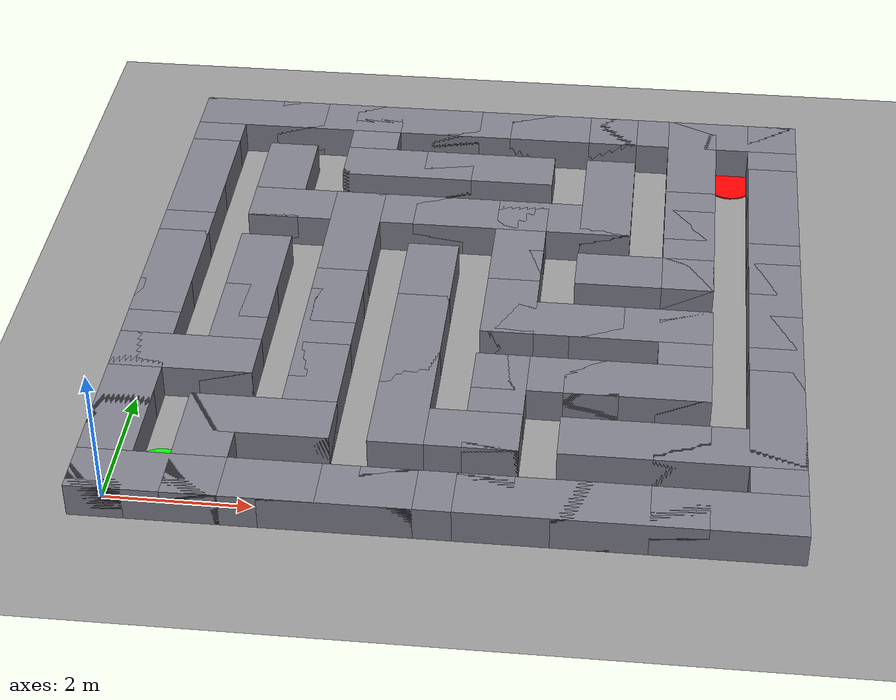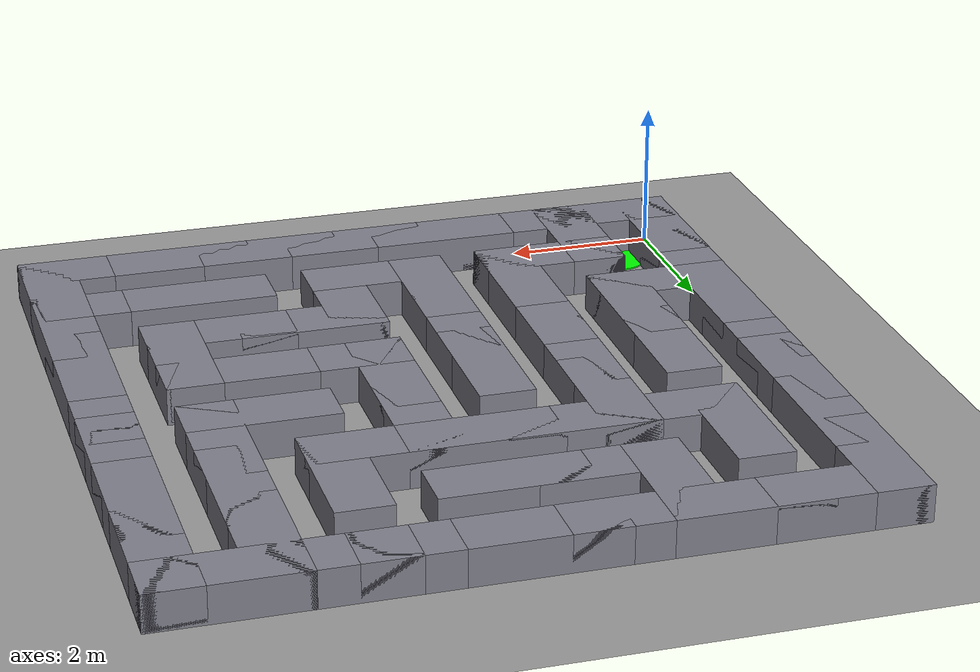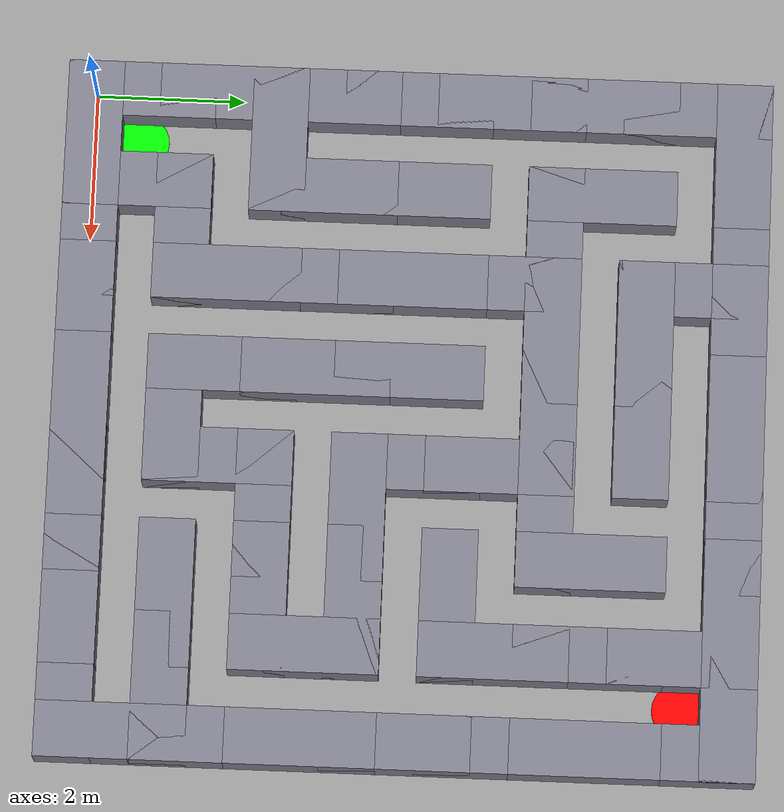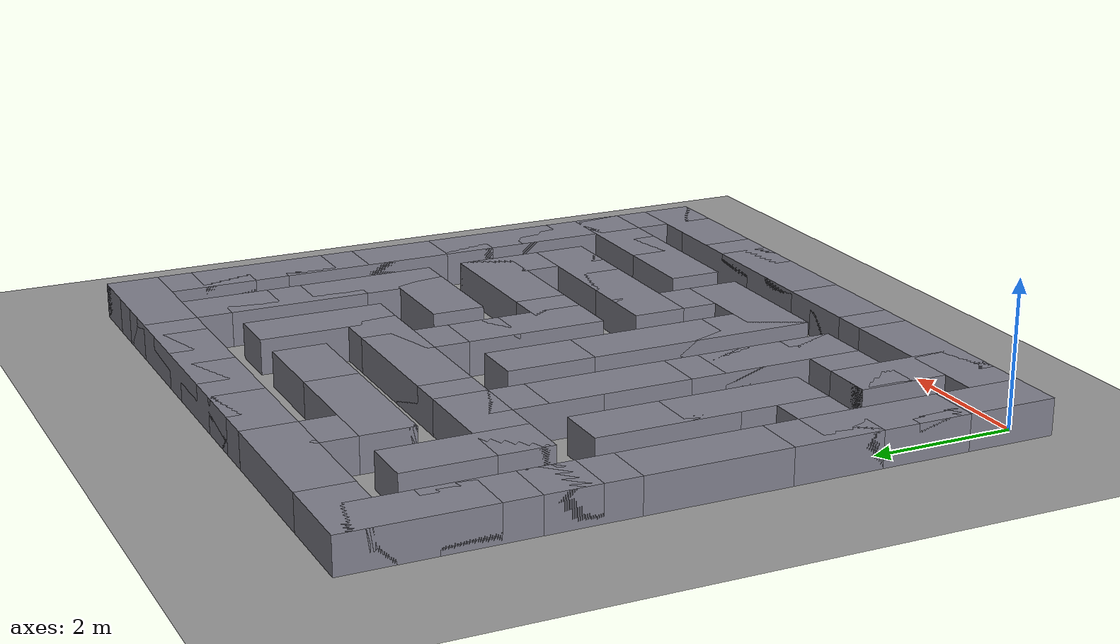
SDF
<?xml version="1.0" ?>
<sdf version="1.10">
  <world name="maze_world">
    <physics name="1ms" type="ode">
      <max_step_size>0.001</max_step_size>
      <real_time_factor>1.0</real_time_factor>
    </physics>

    <plugin filename="gz-sim-physics-system" name="gz::sim::systems::Physics"/>

    <plugin filename="gz-sim-user-commands-system" name="gz::sim::systems::UserCommands"/>

    <plugin filename="gz-sim-scene-broadcaster-system" name="gz::sim::systems::SceneBroadcaster"/>

    <plugin filename="gz-sim-imu-system" name="gz::sim::systems::Imu"/>

    <plugin filename="gz-sim-sensors-system"  name="gz::sim::systems::Sensors">
        <render_engine>ogre2</render_engine>
    </plugin>

    <light type="directional" name="sun">
      <cast_shadows>true</cast_shadows>
      <pose>0 0 10 0 0 0</pose>
      <diffuse>0.8 0.8 0.8 1</diffuse>
      <specular>0.2 0.2 0.2 1</specular>
      <direction>-0.5 0.1 -0.9</direction>
    </light>

    <model name="ground_plane">
      <static>true</static>
      <link name="link">
        <collision name="collision">
          <geometry>
            <plane>
              <normal>0 0 1</normal>
              <size>1000 1000</size>
            </plane>
          </geometry>
        </collision>
        <visual name="visual">
          <geometry>
            <plane>
              <normal>0 0 1</normal>
              <size>1000 1000</size>
            </plane>
          </geometry>
          <material>
            <ambient>0.6 0.6 0.6 1</ambient>
            <diffuse>0.6 0.6 0.6 1</diffuse>
          </material>
        </visual>
      </link>
    </model>
    <model name="wall_0">
      <static>true</static>
      <pose>0.0 0.625 0.25 0 0 1.570796</pose>
      <link name="link">
        <collision name="collision">
          <geometry>
            <box>
              <size>2.0 0.75 0.5</size>
            </box>
          </geometry>
        </collision>
        <visual name="visual">
          <geometry>
            <box>
              <size>2.0 0.75 0.5</size>
            </box>
          </geometry>
          <material>
            <ambient>0.5 0.5 0.55 1</ambient>
            <diffuse>0.5 0.5 0.55 1</diffuse>
          </material>
        </visual>
      </link>
    </model>
    <model name="wall_1">
      <static>true</static>
      <pose>0.625 0.0 0.25 0 0 0.0</pose>
      <link name="link">
        <collision name="collision">
          <geometry>
            <box>
              <size>2.0 0.75 0.5</size>
            </box>
          </geometry>
        </collision>
        <visual name="visual">
          <geometry>
            <box>
              <size>2.0 0.75 0.5</size>
            </box>
          </geometry>
          <material>
            <ambient>0.5 0.5 0.55 1</ambient>
            <diffuse>0.5 0.5 0.55 1</diffuse>
          </material>
        </visual>
      </link>
    </model>
    <model name="wall_2">
      <static>true</static>
      <pose>0.0 1.875 0.25 0 0 1.570796</pose>
      <link name="link">
        <collision name="collision">
          <geometry>
            <box>
              <size>2.0 0.75 0.5</size>
            </box>
          </geometry>
        </collision>
        <visual name="visual">
          <geometry>
            <box>
              <size>2.0 0.75 0.5</size>
            </box>
          </geometry>
          <material>
            <ambient>0.5 0.5 0.55 1</ambient>
            <diffuse>0.5 0.5 0.55 1</diffuse>
          </material>
        </visual>
      </link>
    </model>
    <model name="wall_3">
      <static>true</static>
      <pose>0.0 3.125 0.25 0 0 1.570796</pose>
      <link name="link">
        <collision name="collision">
          <geometry>
            <box>
              <size>2.0 0.75 0.5</size>
            </box>
          </geometry>
        </collision>
        <visual name="visual">
          <geometry>
            <box>
              <size>2.0 0.75 0.5</size>
            </box>
          </geometry>
          <material>
            <ambient>0.5 0.5 0.55 1</ambient>
            <diffuse>0.5 0.5 0.55 1</diffuse>
          </material>
        </visual>
      </link>
    </model>
    <model name="wall_4">
      <static>true</static>
      <pose>0.625 2.5 0.25 0 0 0.0</pose>
      <link name="link">
        <collision name="collision">
          <geometry>
            <box>
              <size>2.0 0.75 0.5</size>
            </box>
          </geometry>
        </collision>
        <visual name="visual">
          <geometry>
            <box>
              <size>2.0 0.75 0.5</size>
            </box>
          </geometry>
          <material>
            <ambient>0.5 0.5 0.55 1</ambient>
            <diffuse>0.5 0.5 0.55 1</diffuse>
          </material>
        </visual>
      </link>
    </model>
    <model name="wall_5">
      <static>true</static>
      <pose>0.0 4.375 0.25 0 0 1.570796</pose>
      <link name="link">
        <collision name="collision">
          <geometry>
            <box>
              <size>2.0 0.75 0.5</size>
            </box>
          </geometry>
        </collision>
        <visual name="visual">
          <geometry>
            <box>
              <size>2.0 0.75 0.5</size>
            </box>
          </geometry>
          <material>
            <ambient>0.5 0.5 0.55 1</ambient>
            <diffuse>0.5 0.5 0.55 1</diffuse>
          </material>
        </visual>
      </link>
    </model>
    <model name="wall_6">
      <static>true</static>
      <pose>0.0 5.625 0.25 0 0 1.570796</pose>
      <link name="link">
        <collision name="collision">
          <geometry>
            <box>
              <size>2.0 0.75 0.5</size>
            </box>
          </geometry>
        </collision>
        <visual name="visual">
          <geometry>
            <box>
              <size>2.0 0.75 0.5</size>
            </box>
          </geometry>
          <material>
            <ambient>0.5 0.5 0.55 1</ambient>
            <diffuse>0.5 0.5 0.55 1</diffuse>
          </material>
        </visual>
      </link>
    </model>
    <model name="wall_7">
      <static>true</static>
      <pose>0.0 6.875 0.25 0 0 1.570796</pose>
      <link name="link">
        <collision name="collision">
          <geometry>
            <box>
              <size>2.0 0.75 0.5</size>
            </box>
          </geometry>
        </collision>
        <visual name="visual">
          <geometry>
            <box>
              <size>2.0 0.75 0.5</size>
            </box>
          </geometry>
          <material>
            <ambient>0.5 0.5 0.55 1</ambient>
            <diffuse>0.5 0.5 0.55 1</diffuse>
          </material>
        </visual>
      </link>
    </model>
    <model name="wall_8">
      <static>true</static>
      <pose>0.0 8.125 0.25 0 0 1.570796</pose>
      <link name="link">
        <collision name="collision">
          <geometry>
            <box>
              <size>2.0 0.75 0.5</size>
            </box>
          </geometry>
        </collision>
        <visual name="visual">
          <geometry>
            <box>
              <size>2.0 0.75 0.5</size>
            </box>
          </geometry>
          <material>
            <ambient>0.5 0.5 0.55 1</ambient>
            <diffuse>0.5 0.5 0.55 1</diffuse>
          </material>
        </visual>
      </link>
    </model>
    <model name="wall_9">
      <static>true</static>
      <pose>0.625 8.75 0.25 0 0 0.0</pose>
      <link name="link">
        <collision name="collision">
          <geometry>
            <box>
              <size>2.0 0.75 0.5</size>
            </box>
          </geometry>
        </collision>
        <visual name="visual">
          <geometry>
            <box>
              <size>2.0 0.75 0.5</size>
            </box>
          </geometry>
          <material>
            <ambient>0.5 0.5 0.55 1</ambient>
            <diffuse>0.5 0.5 0.55 1</diffuse>
          </material>
        </visual>
      </link>
    </model>
    <model name="wall_10">
      <static>true</static>
      <pose>1.25 0.625 0.25 0 0 1.570796</pose>
      <link name="link">
        <collision name="collision">
          <geometry>
            <box>
              <size>2.0 0.75 0.5</size>
            </box>
          </geometry>
        </collision>
        <visual name="visual">
          <geometry>
            <box>
              <size>2.0 0.75 0.5</size>
            </box>
          </geometry>
          <material>
            <ambient>0.5 0.5 0.55 1</ambient>
            <diffuse>0.5 0.5 0.55 1</diffuse>
          </material>
        </visual>
      </link>
    </model>
    <model name="wall_11">
      <static>true</static>
      <pose>1.875 0.0 0.25 0 0 0.0</pose>
      <link name="link">
        <collision name="collision">
          <geometry>
            <box>
              <size>2.0 0.75 0.5</size>
            </box>
          </geometry>
        </collision>
        <visual name="visual">
          <geometry>
            <box>
              <size>2.0 0.75 0.5</size>
            </box>
          </geometry>
          <material>
            <ambient>0.5 0.5 0.55 1</ambient>
            <diffuse>0.5 0.5 0.55 1</diffuse>
          </material>
        </visual>
      </link>
    </model>
    <model name="wall_12">
      <static>true</static>
      <pose>1.875 1.25 0.25 0 0 0.0</pose>
      <link name="link">
        <collision name="collision">
          <geometry>
            <box>
              <size>2.0 0.75 0.5</size>
            </box>
          </geometry>
        </collision>
        <visual name="visual">
          <geometry>
            <box>
              <size>2.0 0.75 0.5</size>
            </box>
          </geometry>
          <material>
            <ambient>0.5 0.5 0.55 1</ambient>
            <diffuse>0.5 0.5 0.55 1</diffuse>
          </material>
        </visual>
      </link>
    </model>
    <model name="wall_13">
      <static>true</static>
      <pose>1.25 3.125 0.25 0 0 1.570796</pose>
      <link name="link">
        <collision name="collision">
          <geometry>
            <box>
              <size>2.0 0.75 0.5</size>
            </box>
          </geometry>
        </collision>
        <visual name="visual">
          <geometry>
            <box>
              <size>2.0 0.75 0.5</size>
            </box>
          </geometry>
          <material>
            <ambient>0.5 0.5 0.55 1</ambient>
            <diffuse>0.5 0.5 0.55 1</diffuse>
          </material>
        </visual>
      </link>
    </model>
    <model name="wall_14">
      <static>true</static>
      <pose>1.25 4.375 0.25 0 0 1.570796</pose>
      <link name="link">
        <collision name="collision">
          <geometry>
            <box>
              <size>2.0 0.75 0.5</size>
            </box>
          </geometry>
        </collision>
        <visual name="visual">
          <geometry>
            <box>
              <size>2.0 0.75 0.5</size>
            </box>
          </geometry>
          <material>
            <ambient>0.5 0.5 0.55 1</ambient>
            <diffuse>0.5 0.5 0.55 1</diffuse>
          </material>
        </visual>
      </link>
    </model>
    <model name="wall_15">
      <static>true</static>
      <pose>1.25 6.875 0.25 0 0 1.570796</pose>
      <link name="link">
        <collision name="collision">
          <geometry>
            <box>
              <size>2.0 0.75 0.5</size>
            </box>
          </geometry>
        </collision>
        <visual name="visual">
          <geometry>
            <box>
              <size>2.0 0.75 0.5</size>
            </box>
          </geometry>
          <material>
            <ambient>0.5 0.5 0.55 1</ambient>
            <diffuse>0.5 0.5 0.55 1</diffuse>
          </material>
        </visual>
      </link>
    </model>
    <model name="wall_16">
      <static>true</static>
      <pose>1.875 6.25 0.25 0 0 0.0</pose>
      <link name="link">
        <collision name="collision">
          <geometry>
            <box>
              <size>2.0 0.75 0.5</size>
            </box>
          </geometry>
        </collision>
        <visual name="visual">
          <geometry>
            <box>
              <size>2.0 0.75 0.5</size>
            </box>
          </geometry>
          <material>
            <ambient>0.5 0.5 0.55 1</ambient>
            <diffuse>0.5 0.5 0.55 1</diffuse>
          </material>
        </visual>
      </link>
    </model>
    <model name="wall_17">
      <static>true</static>
      <pose>1.875 8.75 0.25 0 0 0.0</pose>
      <link name="link">
        <collision name="collision">
          <geometry>
            <box>
              <size>2.0 0.75 0.5</size>
            </box>
          </geometry>
        </collision>
        <visual name="visual">
          <geometry>
            <box>
              <size>2.0 0.75 0.5</size>
            </box>
          </geometry>
          <material>
            <ambient>0.5 0.5 0.55 1</ambient>
            <diffuse>0.5 0.5 0.55 1</diffuse>
          </material>
        </visual>
      </link>
    </model>
    <model name="wall_18">
      <static>true</static>
      <pose>3.125 0.0 0.25 0 0 0.0</pose>
      <link name="link">
        <collision name="collision">
          <geometry>
            <box>
              <size>2.0 0.75 0.5</size>
            </box>
          </geometry>
        </collision>
        <visual name="visual">
          <geometry>
            <box>
              <size>2.0 0.75 0.5</size>
            </box>
          </geometry>
          <material>
            <ambient>0.5 0.5 0.55 1</ambient>
            <diffuse>0.5 0.5 0.55 1</diffuse>
          </material>
        </visual>
      </link>
    </model>
    <model name="wall_19">
      <static>true</static>
      <pose>2.5 1.875 0.25 0 0 1.570796</pose>
      <link name="link">
        <collision name="collision">
          <geometry>
            <box>
              <size>2.0 0.75 0.5</size>
            </box>
          </geometry>
        </collision>
        <visual name="visual">
          <geometry>
            <box>
              <size>2.0 0.75 0.5</size>
            </box>
          </geometry>
          <material>
            <ambient>0.5 0.5 0.55 1</ambient>
            <diffuse>0.5 0.5 0.55 1</diffuse>
          </material>
        </visual>
      </link>
    </model>
    <model name="wall_20">
      <static>true</static>
      <pose>2.5 3.125 0.25 0 0 1.570796</pose>
      <link name="link">
        <collision name="collision">
          <geometry>
            <box>
              <size>2.0 0.75 0.5</size>
            </box>
          </geometry>
        </collision>
        <visual name="visual">
          <geometry>
            <box>
              <size>2.0 0.75 0.5</size>
            </box>
          </geometry>
          <material>
            <ambient>0.5 0.5 0.55 1</ambient>
            <diffuse>0.5 0.5 0.55 1</diffuse>
          </material>
        </visual>
      </link>
    </model>
    <model name="wall_21">
      <static>true</static>
      <pose>2.5 4.375 0.25 0 0 1.570796</pose>
      <link name="link">
        <collision name="collision">
          <geometry>
            <box>
              <size>2.0 0.75 0.5</size>
            </box>
          </geometry>
        </collision>
        <visual name="visual">
          <geometry>
            <box>
              <size>2.0 0.75 0.5</size>
            </box>
          </geometry>
          <material>
            <ambient>0.5 0.5 0.55 1</ambient>
            <diffuse>0.5 0.5 0.55 1</diffuse>
          </material>
        </visual>
      </link>
    </model>
    <model name="wall_22">
      <static>true</static>
      <pose>2.5 5.625 0.25 0 0 1.570796</pose>
      <link name="link">
        <collision name="collision">
          <geometry>
            <box>
              <size>2.0 0.75 0.5</size>
            </box>
          </geometry>
        </collision>
        <visual name="visual">
          <geometry>
            <box>
              <size>2.0 0.75 0.5</size>
            </box>
          </geometry>
          <material>
            <ambient>0.5 0.5 0.55 1</ambient>
            <diffuse>0.5 0.5 0.55 1</diffuse>
          </material>
        </visual>
      </link>
    </model>
    <model name="wall_23">
      <static>true</static>
      <pose>3.125 6.25 0.25 0 0 0.0</pose>
      <link name="link">
        <collision name="collision">
          <geometry>
            <box>
              <size>2.0 0.75 0.5</size>
            </box>
          </geometry>
        </collision>
        <visual name="visual">
          <geometry>
            <box>
              <size>2.0 0.75 0.5</size>
            </box>
          </geometry>
          <material>
            <ambient>0.5 0.5 0.55 1</ambient>
            <diffuse>0.5 0.5 0.55 1</diffuse>
          </material>
        </visual>
      </link>
    </model>
    <model name="wall_24">
      <static>true</static>
      <pose>2.5 8.125 0.25 0 0 1.570796</pose>
      <link name="link">
        <collision name="collision">
          <geometry>
            <box>
              <size>2.0 0.75 0.5</size>
            </box>
          </geometry>
        </collision>
        <visual name="visual">
          <geometry>
            <box>
              <size>2.0 0.75 0.5</size>
            </box>
          </geometry>
          <material>
            <ambient>0.5 0.5 0.55 1</ambient>
            <diffuse>0.5 0.5 0.55 1</diffuse>
          </material>
        </visual>
      </link>
    </model>
    <model name="wall_25">
      <static>true</static>
      <pose>3.125 7.5 0.25 0 0 0.0</pose>
      <link name="link">
        <collision name="collision">
          <geometry>
            <box>
              <size>2.0 0.75 0.5</size>
            </box>
          </geometry>
        </collision>
        <visual name="visual">
          <geometry>
            <box>
              <size>2.0 0.75 0.5</size>
            </box>
          </geometry>
          <material>
            <ambient>0.5 0.5 0.55 1</ambient>
            <diffuse>0.5 0.5 0.55 1</diffuse>
          </material>
        </visual>
      </link>
    </model>
    <model name="wall_26">
      <static>true</static>
      <pose>3.125 8.75 0.25 0 0 0.0</pose>
      <link name="link">
        <collision name="collision">
          <geometry>
            <box>
              <size>2.0 0.75 0.5</size>
            </box>
          </geometry>
        </collision>
        <visual name="visual">
          <geometry>
            <box>
              <size>2.0 0.75 0.5</size>
            </box>
          </geometry>
          <material>
            <ambient>0.5 0.5 0.55 1</ambient>
            <diffuse>0.5 0.5 0.55 1</diffuse>
          </material>
        </visual>
      </link>
    </model>
    <model name="wall_27">
      <static>true</static>
      <pose>4.375 0.0 0.25 0 0 0.0</pose>
      <link name="link">
        <collision name="collision">
          <geometry>
            <box>
              <size>2.0 0.75 0.5</size>
            </box>
          </geometry>
        </collision>
        <visual name="visual">
          <geometry>
            <box>
              <size>2.0 0.75 0.5</size>
            </box>
          </geometry>
          <material>
            <ambient>0.5 0.5 0.55 1</ambient>
            <diffuse>0.5 0.5 0.55 1</diffuse>
          </material>
        </visual>
      </link>
    </model>
    <model name="wall_28">
      <static>true</static>
      <pose>3.75 1.875 0.25 0 0 1.570796</pose>
      <link name="link">
        <collision name="collision">
          <geometry>
            <box>
              <size>2.0 0.75 0.5</size>
            </box>
          </geometry>
        </collision>
        <visual name="visual">
          <geometry>
            <box>
              <size>2.0 0.75 0.5</size>
            </box>
          </geometry>
          <material>
            <ambient>0.5 0.5 0.55 1</ambient>
            <diffuse>0.5 0.5 0.55 1</diffuse>
          </material>
        </visual>
      </link>
    </model>
    <model name="wall_29">
      <static>true</static>
      <pose>4.375 1.25 0.25 0 0 0.0</pose>
      <link name="link">
        <collision name="collision">
          <geometry>
            <box>
              <size>2.0 0.75 0.5</size>
            </box>
          </geometry>
        </collision>
        <visual name="visual">
          <geometry>
            <box>
              <size>2.0 0.75 0.5</size>
            </box>
          </geometry>
          <material>
            <ambient>0.5 0.5 0.55 1</ambient>
            <diffuse>0.5 0.5 0.55 1</diffuse>
          </material>
        </visual>
      </link>
    </model>
    <model name="wall_30">
      <static>true</static>
      <pose>3.75 3.125 0.25 0 0 1.570796</pose>
      <link name="link">
        <collision name="collision">
          <geometry>
            <box>
              <size>2.0 0.75 0.5</size>
            </box>
          </geometry>
        </collision>
        <visual name="visual">
          <geometry>
            <box>
              <size>2.0 0.75 0.5</size>
            </box>
          </geometry>
          <material>
            <ambient>0.5 0.5 0.55 1</ambient>
            <diffuse>0.5 0.5 0.55 1</diffuse>
          </material>
        </visual>
      </link>
    </model>
    <model name="wall_31">
      <static>true</static>
      <pose>3.75 4.375 0.25 0 0 1.570796</pose>
      <link name="link">
        <collision name="collision">
          <geometry>
            <box>
              <size>2.0 0.75 0.5</size>
            </box>
          </geometry>
        </collision>
        <visual name="visual">
          <geometry>
            <box>
              <size>2.0 0.75 0.5</size>
            </box>
          </geometry>
          <material>
            <ambient>0.5 0.5 0.55 1</ambient>
            <diffuse>0.5 0.5 0.55 1</diffuse>
          </material>
        </visual>
      </link>
    </model>
    <model name="wall_32">
      <static>true</static>
      <pose>4.375 6.25 0.25 0 0 0.0</pose>
      <link name="link">
        <collision name="collision">
          <geometry>
            <box>
              <size>2.0 0.75 0.5</size>
            </box>
          </geometry>
        </collision>
        <visual name="visual">
          <geometry>
            <box>
              <size>2.0 0.75 0.5</size>
            </box>
          </geometry>
          <material>
            <ambient>0.5 0.5 0.55 1</ambient>
            <diffuse>0.5 0.5 0.55 1</diffuse>
          </material>
        </visual>
      </link>
    </model>
    <model name="wall_33">
      <static>true</static>
      <pose>4.375 7.5 0.25 0 0 0.0</pose>
      <link name="link">
        <collision name="collision">
          <geometry>
            <box>
              <size>2.0 0.75 0.5</size>
            </box>
          </geometry>
        </collision>
        <visual name="visual">
          <geometry>
            <box>
              <size>2.0 0.75 0.5</size>
            </box>
          </geometry>
          <material>
            <ambient>0.5 0.5 0.55 1</ambient>
            <diffuse>0.5 0.5 0.55 1</diffuse>
          </material>
        </visual>
      </link>
    </model>
    <model name="wall_34">
      <static>true</static>
      <pose>4.375 8.75 0.25 0 0 0.0</pose>
      <link name="link">
        <collision name="collision">
          <geometry>
            <box>
              <size>2.0 0.75 0.5</size>
            </box>
          </geometry>
        </collision>
        <visual name="visual">
          <geometry>
            <box>
              <size>2.0 0.75 0.5</size>
            </box>
          </geometry>
          <material>
            <ambient>0.5 0.5 0.55 1</ambient>
            <diffuse>0.5 0.5 0.55 1</diffuse>
          </material>
        </visual>
      </link>
    </model>
    <model name="wall_35">
      <static>true</static>
      <pose>5.625 0.0 0.25 0 0 0.0</pose>
      <link name="link">
        <collision name="collision">
          <geometry>
            <box>
              <size>2.0 0.75 0.5</size>
            </box>
          </geometry>
        </collision>
        <visual name="visual">
          <geometry>
            <box>
              <size>2.0 0.75 0.5</size>
            </box>
          </geometry>
          <material>
            <ambient>0.5 0.5 0.55 1</ambient>
            <diffuse>0.5 0.5 0.55 1</diffuse>
          </material>
        </visual>
      </link>
    </model>
    <model name="wall_36">
      <static>true</static>
      <pose>5.0 1.875 0.25 0 0 1.570796</pose>
      <link name="link">
        <collision name="collision">
          <geometry>
            <box>
              <size>2.0 0.75 0.5</size>
            </box>
          </geometry>
        </collision>
        <visual name="visual">
          <geometry>
            <box>
              <size>2.0 0.75 0.5</size>
            </box>
          </geometry>
          <material>
            <ambient>0.5 0.5 0.55 1</ambient>
            <diffuse>0.5 0.5 0.55 1</diffuse>
          </material>
        </visual>
      </link>
    </model>
    <model name="wall_37">
      <static>true</static>
      <pose>5.625 2.5 0.25 0 0 0.0</pose>
      <link name="link">
        <collision name="collision">
          <geometry>
            <box>
              <size>2.0 0.75 0.5</size>
            </box>
          </geometry>
        </collision>
        <visual name="visual">
          <geometry>
            <box>
              <size>2.0 0.75 0.5</size>
            </box>
          </geometry>
          <material>
            <ambient>0.5 0.5 0.55 1</ambient>
            <diffuse>0.5 0.5 0.55 1</diffuse>
          </material>
        </visual>
      </link>
    </model>
    <model name="wall_38">
      <static>true</static>
      <pose>5.0 4.375 0.25 0 0 1.570796</pose>
      <link name="link">
        <collision name="collision">
          <geometry>
            <box>
              <size>2.0 0.75 0.5</size>
            </box>
          </geometry>
        </collision>
        <visual name="visual">
          <geometry>
            <box>
              <size>2.0 0.75 0.5</size>
            </box>
          </geometry>
          <material>
            <ambient>0.5 0.5 0.55 1</ambient>
            <diffuse>0.5 0.5 0.55 1</diffuse>
          </material>
        </visual>
      </link>
    </model>
    <model name="wall_39">
      <static>true</static>
      <pose>5.625 3.75 0.25 0 0 0.0</pose>
      <link name="link">
        <collision name="collision">
          <geometry>
            <box>
              <size>2.0 0.75 0.5</size>
            </box>
          </geometry>
        </collision>
        <visual name="visual">
          <geometry>
            <box>
              <size>2.0 0.75 0.5</size>
            </box>
          </geometry>
          <material>
            <ambient>0.5 0.5 0.55 1</ambient>
            <diffuse>0.5 0.5 0.55 1</diffuse>
          </material>
        </visual>
      </link>
    </model>
    <model name="wall_40">
      <static>true</static>
      <pose>5.0 5.625 0.25 0 0 1.570796</pose>
      <link name="link">
        <collision name="collision">
          <geometry>
            <box>
              <size>2.0 0.75 0.5</size>
            </box>
          </geometry>
        </collision>
        <visual name="visual">
          <geometry>
            <box>
              <size>2.0 0.75 0.5</size>
            </box>
          </geometry>
          <material>
            <ambient>0.5 0.5 0.55 1</ambient>
            <diffuse>0.5 0.5 0.55 1</diffuse>
          </material>
        </visual>
      </link>
    </model>
    <model name="wall_41">
      <static>true</static>
      <pose>5.625 6.25 0.25 0 0 0.0</pose>
      <link name="link">
        <collision name="collision">
          <geometry>
            <box>
              <size>2.0 0.75 0.5</size>
            </box>
          </geometry>
        </collision>
        <visual name="visual">
          <geometry>
            <box>
              <size>2.0 0.75 0.5</size>
            </box>
          </geometry>
          <material>
            <ambient>0.5 0.5 0.55 1</ambient>
            <diffuse>0.5 0.5 0.55 1</diffuse>
          </material>
        </visual>
      </link>
    </model>
    <model name="wall_42">
      <static>true</static>
      <pose>5.625 8.75 0.25 0 0 0.0</pose>
      <link name="link">
        <collision name="collision">
          <geometry>
            <box>
              <size>2.0 0.75 0.5</size>
            </box>
          </geometry>
        </collision>
        <visual name="visual">
          <geometry>
            <box>
              <size>2.0 0.75 0.5</size>
            </box>
          </geometry>
          <material>
            <ambient>0.5 0.5 0.55 1</ambient>
            <diffuse>0.5 0.5 0.55 1</diffuse>
          </material>
        </visual>
      </link>
    </model>
    <model name="wall_43">
      <static>true</static>
      <pose>6.875 0.0 0.25 0 0 0.0</pose>
      <link name="link">
        <collision name="collision">
          <geometry>
            <box>
              <size>2.0 0.75 0.5</size>
            </box>
          </geometry>
        </collision>
        <visual name="visual">
          <geometry>
            <box>
              <size>2.0 0.75 0.5</size>
            </box>
          </geometry>
          <material>
            <ambient>0.5 0.5 0.55 1</ambient>
            <diffuse>0.5 0.5 0.55 1</diffuse>
          </material>
        </visual>
      </link>
    </model>
    <model name="wall_44">
      <static>true</static>
      <pose>6.875 1.25 0.25 0 0 0.0</pose>
      <link name="link">
        <collision name="collision">
          <geometry>
            <box>
              <size>2.0 0.75 0.5</size>
            </box>
          </geometry>
        </collision>
        <visual name="visual">
          <geometry>
            <box>
              <size>2.0 0.75 0.5</size>
            </box>
          </geometry>
          <material>
            <ambient>0.5 0.5 0.55 1</ambient>
            <diffuse>0.5 0.5 0.55 1</diffuse>
          </material>
        </visual>
      </link>
    </model>
    <model name="wall_45">
      <static>true</static>
      <pose>6.875 2.5 0.25 0 0 0.0</pose>
      <link name="link">
        <collision name="collision">
          <geometry>
            <box>
              <size>2.0 0.75 0.5</size>
            </box>
          </geometry>
        </collision>
        <visual name="visual">
          <geometry>
            <box>
              <size>2.0 0.75 0.5</size>
            </box>
          </geometry>
          <material>
            <ambient>0.5 0.5 0.55 1</ambient>
            <diffuse>0.5 0.5 0.55 1</diffuse>
          </material>
        </visual>
      </link>
    </model>
    <model name="wall_46">
      <static>true</static>
      <pose>6.875 3.75 0.25 0 0 0.0</pose>
      <link name="link">
        <collision name="collision">
          <geometry>
            <box>
              <size>2.0 0.75 0.5</size>
            </box>
          </geometry>
        </collision>
        <visual name="visual">
          <geometry>
            <box>
              <size>2.0 0.75 0.5</size>
            </box>
          </geometry>
          <material>
            <ambient>0.5 0.5 0.55 1</ambient>
            <diffuse>0.5 0.5 0.55 1</diffuse>
          </material>
        </visual>
      </link>
    </model>
    <model name="wall_47">
      <static>true</static>
      <pose>6.875 5.0 0.25 0 0 0.0</pose>
      <link name="link">
        <collision name="collision">
          <geometry>
            <box>
              <size>2.0 0.75 0.5</size>
            </box>
          </geometry>
        </collision>
        <visual name="visual">
          <geometry>
            <box>
              <size>2.0 0.75 0.5</size>
            </box>
          </geometry>
          <material>
            <ambient>0.5 0.5 0.55 1</ambient>
            <diffuse>0.5 0.5 0.55 1</diffuse>
          </material>
        </visual>
      </link>
    </model>
    <model name="wall_48">
      <static>true</static>
      <pose>6.25 6.875 0.25 0 0 1.570796</pose>
      <link name="link">
        <collision name="collision">
          <geometry>
            <box>
              <size>2.0 0.75 0.5</size>
            </box>
          </geometry>
        </collision>
        <visual name="visual">
          <geometry>
            <box>
              <size>2.0 0.75 0.5</size>
            </box>
          </geometry>
          <material>
            <ambient>0.5 0.5 0.55 1</ambient>
            <diffuse>0.5 0.5 0.55 1</diffuse>
          </material>
        </visual>
      </link>
    </model>
    <model name="wall_49">
      <static>true</static>
      <pose>6.875 8.75 0.25 0 0 0.0</pose>
      <link name="link">
        <collision name="collision">
          <geometry>
            <box>
              <size>2.0 0.75 0.5</size>
            </box>
          </geometry>
        </collision>
        <visual name="visual">
          <geometry>
            <box>
              <size>2.0 0.75 0.5</size>
            </box>
          </geometry>
          <material>
            <ambient>0.5 0.5 0.55 1</ambient>
            <diffuse>0.5 0.5 0.55 1</diffuse>
          </material>
        </visual>
      </link>
    </model>
    <model name="wall_50">
      <static>true</static>
      <pose>8.125 0.0 0.25 0 0 0.0</pose>
      <link name="link">
        <collision name="collision">
          <geometry>
            <box>
              <size>2.0 0.75 0.5</size>
            </box>
          </geometry>
        </collision>
        <visual name="visual">
          <geometry>
            <box>
              <size>2.0 0.75 0.5</size>
            </box>
          </geometry>
          <material>
            <ambient>0.5 0.5 0.55 1</ambient>
            <diffuse>0.5 0.5 0.55 1</diffuse>
          </material>
        </visual>
      </link>
    </model>
    <model name="wall_51">
      <static>true</static>
      <pose>8.125 1.25 0.25 0 0 0.0</pose>
      <link name="link">
        <collision name="collision">
          <geometry>
            <box>
              <size>2.0 0.75 0.5</size>
            </box>
          </geometry>
        </collision>
        <visual name="visual">
          <geometry>
            <box>
              <size>2.0 0.75 0.5</size>
            </box>
          </geometry>
          <material>
            <ambient>0.5 0.5 0.55 1</ambient>
            <diffuse>0.5 0.5 0.55 1</diffuse>
          </material>
        </visual>
      </link>
    </model>
    <model name="wall_52">
      <static>true</static>
      <pose>7.5 3.125 0.25 0 0 1.570796</pose>
      <link name="link">
        <collision name="collision">
          <geometry>
            <box>
              <size>2.0 0.75 0.5</size>
            </box>
          </geometry>
        </collision>
        <visual name="visual">
          <geometry>
            <box>
              <size>2.0 0.75 0.5</size>
            </box>
          </geometry>
          <material>
            <ambient>0.5 0.5 0.55 1</ambient>
            <diffuse>0.5 0.5 0.55 1</diffuse>
          </material>
        </visual>
      </link>
    </model>
    <model name="wall_53">
      <static>true</static>
      <pose>7.5 5.625 0.25 0 0 1.570796</pose>
      <link name="link">
        <collision name="collision">
          <geometry>
            <box>
              <size>2.0 0.75 0.5</size>
            </box>
          </geometry>
        </collision>
        <visual name="visual">
          <geometry>
            <box>
              <size>2.0 0.75 0.5</size>
            </box>
          </geometry>
          <material>
            <ambient>0.5 0.5 0.55 1</ambient>
            <diffuse>0.5 0.5 0.55 1</diffuse>
          </material>
        </visual>
      </link>
    </model>
    <model name="wall_54">
      <static>true</static>
      <pose>7.5 6.875 0.25 0 0 1.570796</pose>
      <link name="link">
        <collision name="collision">
          <geometry>
            <box>
              <size>2.0 0.75 0.5</size>
            </box>
          </geometry>
        </collision>
        <visual name="visual">
          <geometry>
            <box>
              <size>2.0 0.75 0.5</size>
            </box>
          </geometry>
          <material>
            <ambient>0.5 0.5 0.55 1</ambient>
            <diffuse>0.5 0.5 0.55 1</diffuse>
          </material>
        </visual>
      </link>
    </model>
    <model name="wall_55">
      <static>true</static>
      <pose>7.5 8.125 0.25 0 0 1.570796</pose>
      <link name="link">
        <collision name="collision">
          <geometry>
            <box>
              <size>2.0 0.75 0.5</size>
            </box>
          </geometry>
        </collision>
        <visual name="visual">
          <geometry>
            <box>
              <size>2.0 0.75 0.5</size>
            </box>
          </geometry>
          <material>
            <ambient>0.5 0.5 0.55 1</ambient>
            <diffuse>0.5 0.5 0.55 1</diffuse>
          </material>
        </visual>
      </link>
    </model>
    <model name="wall_56">
      <static>true</static>
      <pose>8.125 8.75 0.25 0 0 0.0</pose>
      <link name="link">
        <collision name="collision">
          <geometry>
            <box>
              <size>2.0 0.75 0.5</size>
            </box>
          </geometry>
        </collision>
        <visual name="visual">
          <geometry>
            <box>
              <size>2.0 0.75 0.5</size>
            </box>
          </geometry>
          <material>
            <ambient>0.5 0.5 0.55 1</ambient>
            <diffuse>0.5 0.5 0.55 1</diffuse>
          </material>
        </visual>
      </link>
    </model>
    <model name="wall_57">
      <static>true</static>
      <pose>8.75 0.625 0.25 0 0 1.570796</pose>
      <link name="link">
        <collision name="collision">
          <geometry>
            <box>
              <size>2.0 0.75 0.5</size>
            </box>
          </geometry>
        </collision>
        <visual name="visual">
          <geometry>
            <box>
              <size>2.0 0.75 0.5</size>
            </box>
          </geometry>
          <material>
            <ambient>0.5 0.5 0.55 1</ambient>
            <diffuse>0.5 0.5 0.55 1</diffuse>
          </material>
        </visual>
      </link>
    </model>
    <model name="wall_58">
      <static>true</static>
      <pose>8.75 1.875 0.25 0 0 1.570796</pose>
      <link name="link">
        <collision name="collision">
          <geometry>
            <box>
              <size>2.0 0.75 0.5</size>
            </box>
          </geometry>
        </collision>
        <visual name="visual">
          <geometry>
            <box>
              <size>2.0 0.75 0.5</size>
            </box>
          </geometry>
          <material>
            <ambient>0.5 0.5 0.55 1</ambient>
            <diffuse>0.5 0.5 0.55 1</diffuse>
          </material>
        </visual>
      </link>
    </model>
    <model name="wall_59">
      <static>true</static>
      <pose>8.75 3.125 0.25 0 0 1.570796</pose>
      <link name="link">
        <collision name="collision">
          <geometry>
            <box>
              <size>2.0 0.75 0.5</size>
            </box>
          </geometry>
        </collision>
        <visual name="visual">
          <geometry>
            <box>
              <size>2.0 0.75 0.5</size>
            </box>
          </geometry>
          <material>
            <ambient>0.5 0.5 0.55 1</ambient>
            <diffuse>0.5 0.5 0.55 1</diffuse>
          </material>
        </visual>
      </link>
    </model>
    <model name="wall_60">
      <static>true</static>
      <pose>8.75 4.375 0.25 0 0 1.570796</pose>
      <link name="link">
        <collision name="collision">
          <geometry>
            <box>
              <size>2.0 0.75 0.5</size>
            </box>
          </geometry>
        </collision>
        <visual name="visual">
          <geometry>
            <box>
              <size>2.0 0.75 0.5</size>
            </box>
          </geometry>
          <material>
            <ambient>0.5 0.5 0.55 1</ambient>
            <diffuse>0.5 0.5 0.55 1</diffuse>
          </material>
        </visual>
      </link>
    </model>
    <model name="wall_61">
      <static>true</static>
      <pose>8.75 5.625 0.25 0 0 1.570796</pose>
      <link name="link">
        <collision name="collision">
          <geometry>
            <box>
              <size>2.0 0.75 0.5</size>
            </box>
          </geometry>
        </collision>
        <visual name="visual">
          <geometry>
            <box>
              <size>2.0 0.75 0.5</size>
            </box>
          </geometry>
          <material>
            <ambient>0.5 0.5 0.55 1</ambient>
            <diffuse>0.5 0.5 0.55 1</diffuse>
          </material>
        </visual>
      </link>
    </model>
    <model name="wall_62">
      <static>true</static>
      <pose>8.75 6.875 0.25 0 0 1.570796</pose>
      <link name="link">
        <collision name="collision">
          <geometry>
            <box>
              <size>2.0 0.75 0.5</size>
            </box>
          </geometry>
        </collision>
        <visual name="visual">
          <geometry>
            <box>
              <size>2.0 0.75 0.5</size>
            </box>
          </geometry>
          <material>
            <ambient>0.5 0.5 0.55 1</ambient>
            <diffuse>0.5 0.5 0.55 1</diffuse>
          </material>
        </visual>
      </link>
    </model>
    <model name="wall_63">
      <static>true</static>
      <pose>8.75 8.125 0.25 0 0 1.570796</pose>
      <link name="link">
        <collision name="collision">
          <geometry>
            <box>
              <size>2.0 0.75 0.5</size>
            </box>
          </geometry>
        </collision>
        <visual name="visual">
          <geometry>
            <box>
              <size>2.0 0.75 0.5</size>
            </box>
          </geometry>
          <material>
            <ambient>0.5 0.5 0.55 1</ambient>
            <diffuse>0.5 0.5 0.55 1</diffuse>
          </material>
        </visual>
      </link>
    </model>
    <model name="start_marker">
      <static>true</static>
      <pose>0.625 0.625 0.01 0 0 0</pose>
      <link name="link">
        <visual name="visual">
          <geometry>
            <cylinder>
              <radius>0.375</radius>
              <length>0.02</length>
            </cylinder>
          </geometry>
          <material>
            <ambient>0.0 1.0 0.0 1.0</ambient>
            <diffuse>0.0 1.0 0.0 1.0</diffuse>
            <emissive>0.0 0.3 0.0 1.0</emissive>
          </material>
        </visual>
      </link>
    </model>
    <model name="end_marker">
      <static>true</static>
      <pose>8.125 8.125 0.01 0 0 0</pose>
      <link name="link">
        <visual name="visual">
          <geometry>
            <cylinder>
              <radius>0.375</radius>
              <length>0.02</length>
            </cylinder>
          </geometry>
          <material>
            <ambient>1.0 0.0 0.0 1.0</ambient>
            <diffuse>1.0 0.0 0.0 1.0</diffuse>
            <emissive>0.3 0.0 0.0 1.0</emissive>
          </material>
        </visual>
      </link>
    </model>
  </world>
</sdf>
